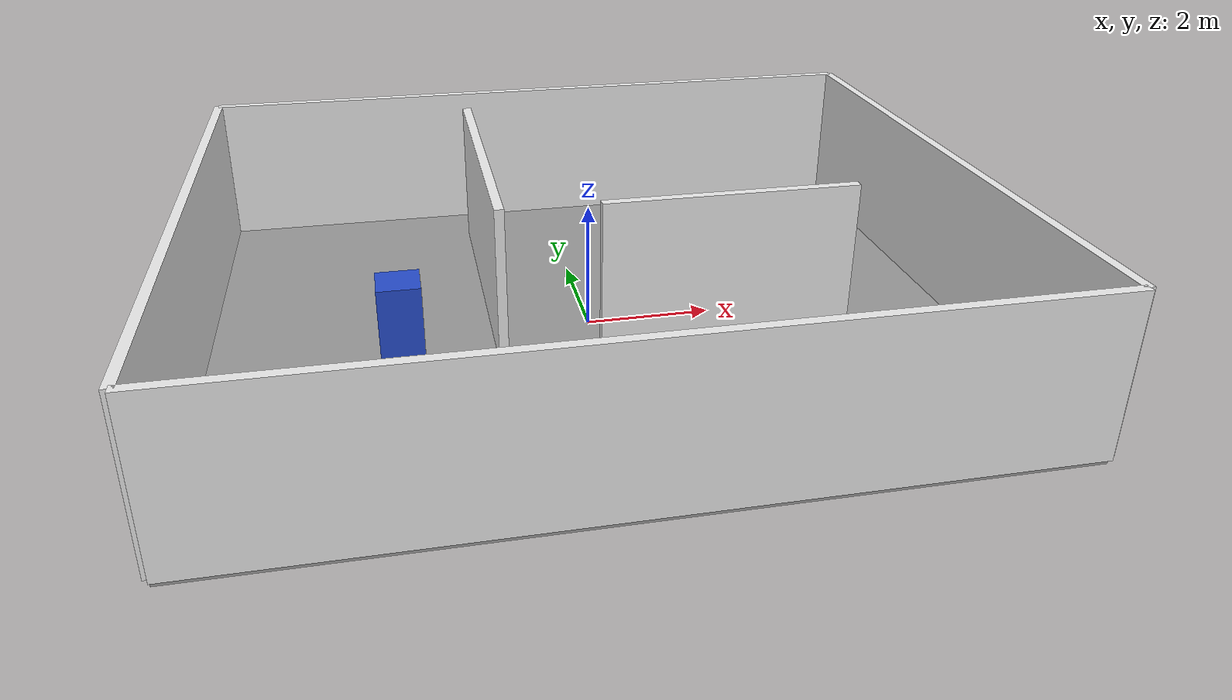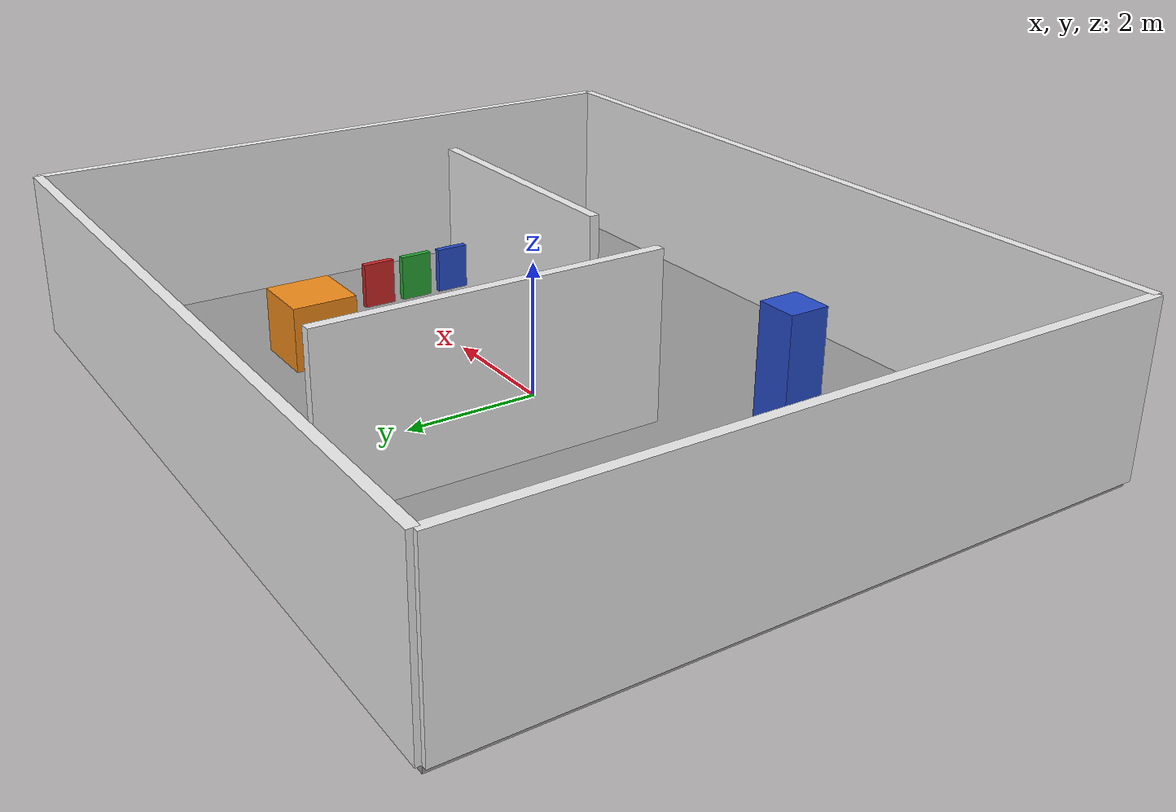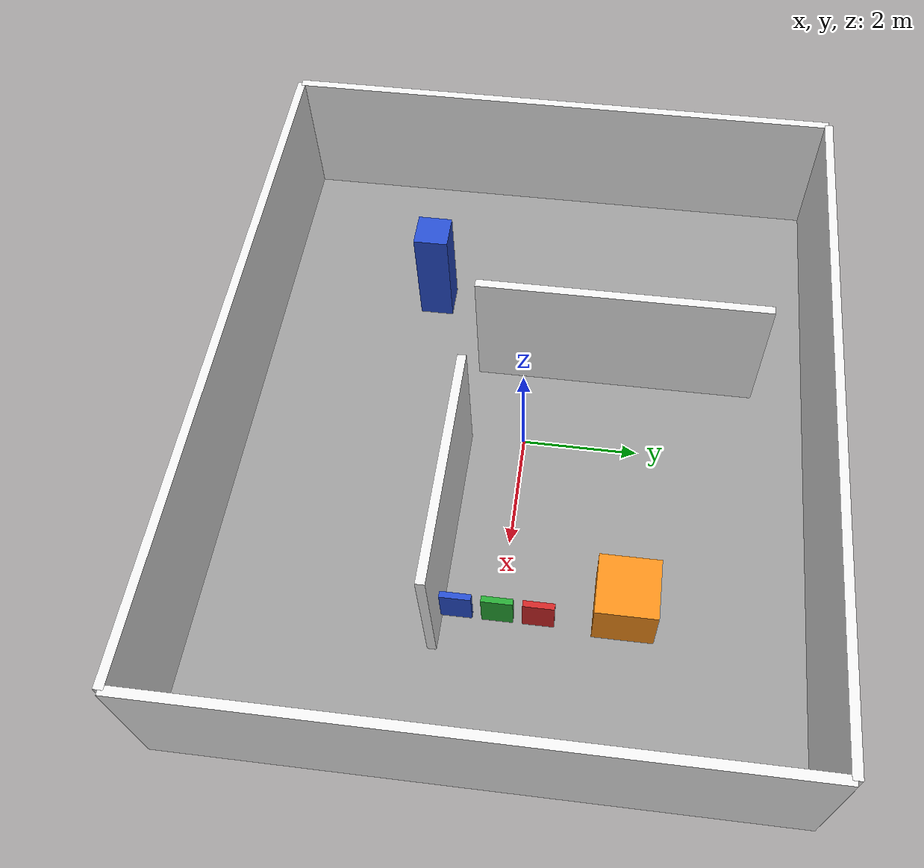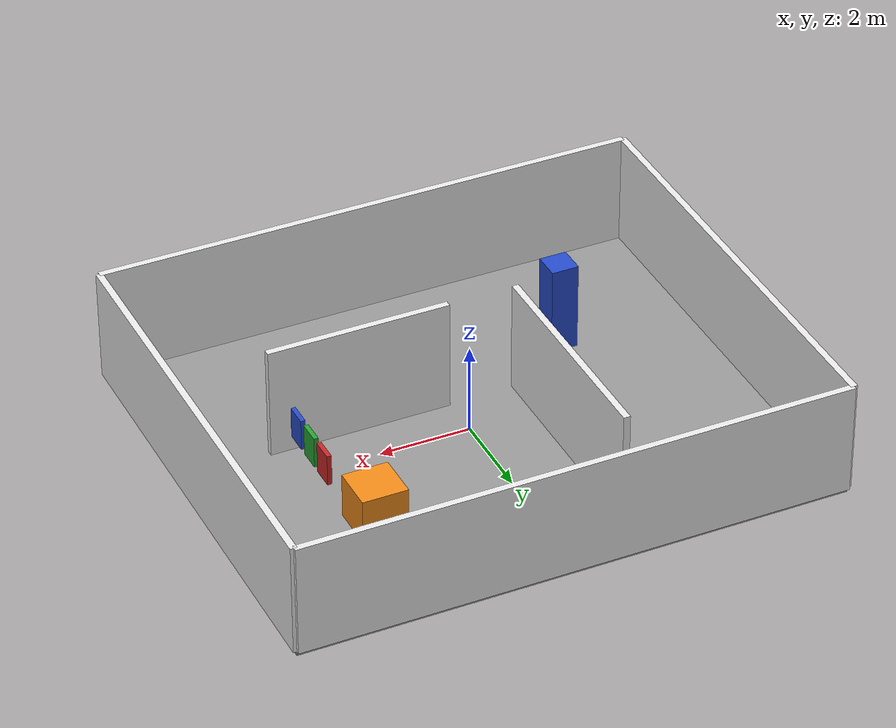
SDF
<?xml version='1.0' encoding='utf-8'?>
<sdf version="1.6">
  <world name="calibration_room">
    <gravity>0 0 -9.81</gravity>
    <physics name="default_physics" type="ode">
      <max_step_size>0.001</max_step_size>
      <real_time_update_rate>1000</real_time_update_rate>
    </physics>
    <scene>
      <ambient>0.45 0.45 0.45 1</ambient>
      <background>0.7 0.8 0.9 1</background>
      <shadows>true</shadows>
    </scene>
    <light name="sun" type="directional">
      <pose>0 0 10 0 0 0</pose>
      <diffuse>0.9 0.9 0.9 1</diffuse>
      <specular>0.2 0.2 0.2 1</specular>
      <direction>-0.5 0.2 -0.9</direction>
      <cast_shadows>true</cast_shadows>
    </light>
    <model name="floor">
      <static>true</static>
      <pose>0 0 -0.05 0 0 0</pose>
      <link name="link">
        <collision name="collision">
          <geometry>
            <box>
              <size>12 10 0.1</size>
            </box>
          </geometry>
        </collision>
        <visual name="visual">
          <geometry>
            <box>
              <size>12 10 0.1</size>
            </box>
          </geometry>
          <material>
            <script>
              <uri>file://media/materials/scripts/gazebo.material</uri>
              <name>Gazebo/Grey</name>
            </script>
          </material>
        </visual>
      </link>
    </model>
    <model name="north_wall">
      <static>true</static>
      <pose>0 5 1.25 0 0 0</pose>
      <link name="link">
        <collision name="collision">
          <geometry>
            <box>
              <size>12 0.15 2.5</size>
            </box>
          </geometry>
        </collision>
        <visual name="visual">
          <geometry>
            <box>
              <size>12 0.15 2.5</size>
            </box>
          </geometry>
          <material>
            <script>
              <uri>file://media/materials/scripts/gazebo.material</uri>
              <name>Gazebo/White</name>
            </script>
          </material>
        </visual>
      </link>
    </model>
    <model name="south_wall">
      <static>true</static>
      <pose>0 -5 1.25 0 0 0</pose>
      <link name="link">
        <collision name="collision">
          <geometry>
            <box>
              <size>12 0.15 2.5</size>
            </box>
          </geometry>
        </collision>
        <visual name="visual">
          <geometry>
            <box>
              <size>12 0.15 2.5</size>
            </box>
          </geometry>
          <material>
            <script>
              <uri>file://media/materials/scripts/gazebo.material</uri>
              <name>Gazebo/White</name>
            </script>
          </material>
        </visual>
      </link>
    </model>
    <model name="east_wall">
      <static>true</static>
      <pose>6 0 1.25 0 0 0</pose>
      <link name="link">
        <collision name="collision">
          <geometry>
            <box>
              <size>0.15 10 2.5</size>
            </box>
          </geometry>
        </collision>
        <visual name="visual">
          <geometry>
            <box>
              <size>0.15 10 2.5</size>
            </box>
          </geometry>
          <material>
            <script>
              <uri>file://media/materials/scripts/gazebo.material</uri>
              <name>Gazebo/White</name>
            </script>
          </material>
        </visual>
      </link>
    </model>
    <model name="west_wall">
      <static>true</static>
      <pose>-6 0 1.25 0 0 0</pose>
      <link name="link">
        <collision name="collision">
          <geometry>
            <box>
              <size>0.15 10 2.5</size>
            </box>
          </geometry>
        </collision>
        <visual name="visual">
          <geometry>
            <box>
              <size>0.15 10 2.5</size>
            </box>
          </geometry>
          <material>
            <script>
              <uri>file://media/materials/scripts/gazebo.material</uri>
              <name>Gazebo/White</name>
            </script>
          </material>
        </visual>
      </link>
    </model>
    <model name="partition_a">
      <static>true</static>
      <pose>-1.5 1.5 1.25 0 0 0</pose>
      <link name="link">
        <collision name="collision">
          <geometry>
            <box>
              <size>0.15 5 2.5</size>
            </box>
          </geometry>
        </collision>
        <visual name="visual">
          <geometry>
            <box>
              <size>0.15 5 2.5</size>
            </box>
          </geometry>
          <material>
            <script>
              <uri>file://media/materials/scripts/gazebo.material</uri>
              <name>Gazebo/White</name>
            </script>
          </material>
        </visual>
      </link>
    </model>
    <model name="partition_b">
      <static>true</static>
      <pose>2 -1 1.25 0 0 0</pose>
      <link name="link">
        <collision name="collision">
          <geometry>
            <box>
              <size>4 0.15 2.5</size>
            </box>
          </geometry>
        </collision>
        <visual name="visual">
          <geometry>
            <box>
              <size>4 0.15 2.5</size>
            </box>
          </geometry>
          <material>
            <script>
              <uri>file://media/materials/scripts/gazebo.material</uri>
              <name>Gazebo/White</name>
            </script>
          </material>
        </visual>
      </link>
    </model>
    <model name="crate">
      <static>true</static>
      <pose>3 2 0.5 0 0 0</pose>
      <link name="link">
        <collision name="collision">
          <geometry>
            <box>
              <size>1 1 1</size>
            </box>
          </geometry>
        </collision>
        <visual name="visual">
          <geometry>
            <box>
              <size>1 1 1</size>
            </box>
          </geometry>
          <material>
            <script>
              <uri>file://media/materials/scripts/gazebo.material</uri>
              <name>Gazebo/Orange</name>
            </script>
          </material>
        </visual>
      </link>
    </model>
    <model name="pillar">
      <static>true</static>
      <pose>-3 -2 1 0 0 0</pose>
      <link name="link">
        <collision name="collision">
          <geometry>
            <box>
              <size>0.6 0.6 2</size>
            </box>
          </geometry>
        </collision>
        <visual name="visual">
          <geometry>
            <box>
              <size>0.6 0.6 2</size>
            </box>
          </geometry>
          <material>
            <script>
              <uri>file://media/materials/scripts/gazebo.material</uri>
              <name>Gazebo/Blue</name>
            </script>
          </material>
        </visual>
      </link>
    </model>
    <model name="camera_color_target_red">
      <static>true</static>
      <pose>3.5 0.65 0.70 0 0 0</pose>
      <link name="link">
        <collision name="collision">
          <geometry><box><size>0.10 0.50 0.70</size></box></geometry>
        </collision>
        <visual name="visual">
          <geometry><box><size>0.10 0.50 0.70</size></box></geometry>
          <material>
            <script>
              <uri>file://media/materials/scripts/gazebo.material</uri>
              <name>Gazebo/Red</name>
            </script>
          </material>
        </visual>
      </link>
    </model>
    <model name="camera_color_target_green">
      <static>true</static>
      <pose>3.5 0 0.70 0 0 0</pose>
      <link name="link">
        <collision name="collision">
          <geometry><box><size>0.10 0.50 0.70</size></box></geometry>
        </collision>
        <visual name="visual">
          <geometry><box><size>0.10 0.50 0.70</size></box></geometry>
          <material>
            <script>
              <uri>file://media/materials/scripts/gazebo.material</uri>
              <name>Gazebo/Green</name>
            </script>
          </material>
        </visual>
      </link>
    </model>
    <model name="camera_color_target_blue">
      <static>true</static>
      <pose>3.5 -0.65 0.70 0 0 0</pose>
      <link name="link">
        <collision name="collision">
          <geometry><box><size>0.10 0.50 0.70</size></box></geometry>
        </collision>
        <visual name="visual">
          <geometry><box><size>0.10 0.50 0.70</size></box></geometry>
          <material>
            <script>
              <uri>file://media/materials/scripts/gazebo.material</uri>
              <name>Gazebo/Blue</name>
            </script>
          </material>
        </visual>
      </link>
    </model>
  </world>
</sdf>
